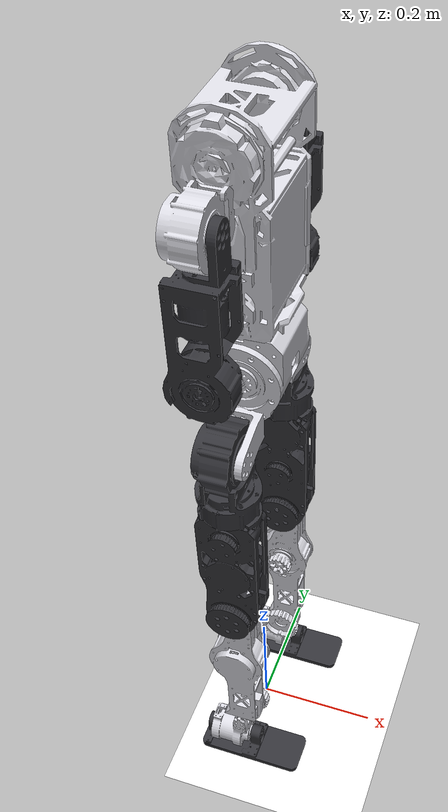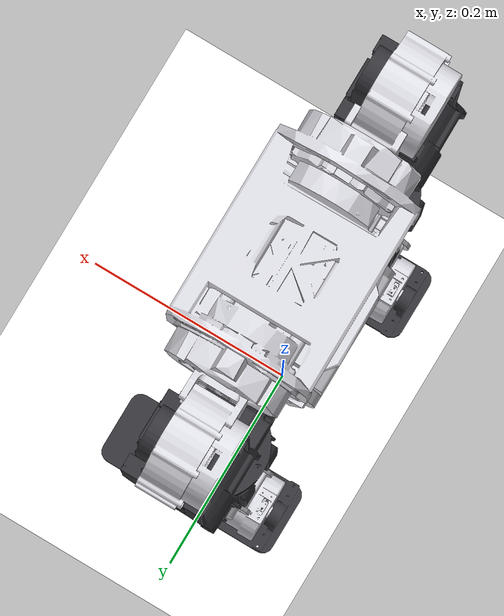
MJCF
<mujoco model="E1">
  <compiler angle="radian" meshdir="../meshes/" autolimits="true"/>

  <default>
    <default class="E1">
        <default class="visual">
            <geom type="mesh" group="1" contype="0" conaffinity="0" density="0"/>
        </default>

        <default class="collision">
            <geom group="3" mass="0" density="0" />
        </default>

        <default class="RS00">
          <joint damping="0.1" armature="0.001" frictionloss="0.3"/>
        </default>

        <default class="RS03">
          <joint damping="0.1" armature="0.02" frictionloss="0.3"/>
        </default>

        <default class="RS06">
          <joint damping="0.1" armature="0.012" frictionloss="0.3"/>
        </default>

    </default>
  </default>

  <asset>
    <texture type="skybox" builtin="gradient" rgb1="1 1 1" rgb2="1 1 1" width="800" height="800"/>
    <texture type="2d" name="groundplane" builtin="checker" mark="edge" rgb1="1 1 1" rgb2="1 1 1" markrgb="0 0 0" width="300" height="300"/>
    <material name="groundplane" texture="groundplane" texuniform="true" texrepeat="5 5" reflectance="0"/>
    <texture type="skybox" builtin="gradient" rgb1=".4 .5 .6" rgb2="0 0 0" width="100" height="100"/>
    <texture builtin="flat" height="1278" mark="cross" markrgb="1 1 1" name="texgeom" random="0.01" rgb1="0.8 0.6 0.4" rgb2="0.8 0.6 0.4" type="cube" width="127"/>
    <texture name="texplane" builtin="checker" height="512" width="512" rgb1=".2 .3 .4" rgb2=".1 .15 .2" type="2d" />
    <material name="MatPlane" reflectance="0.5" shininess="0.01" specular="0.1" texrepeat="1 1" texture="texplane" texuniform="true" />
    <material name="geom" texture="texgeom" texuniform="true"/>
  </asset>

  <worldbody>
    <geom name="floor" size="0 0 0.01" type="plane" material="groundplane" contype="1" conaffinity="0" priority="1" friction="0.6" condim="3"/>
    <light diffuse=".5 .5 .5" pos="-3 -3 5" dir="3 3 -5" castshadow="true"/>
  </worldbody>

  <asset>
    <mesh name="pelvis" file="pelvis.STL"/>
    <mesh name="left_hip_pitch_link" file="left_hip_pitch_link.STL"/>
    <mesh name="left_hip_roll_link" file="left_hip_roll_link.STL"/>
    <mesh name="left_hip_yaw_link" file="left_hip_yaw_link.STL"/>
    <mesh name="left_knee_link" file="left_knee_link.STL"/>
    <mesh name="left_ankle_pitch_link" file="left_ankle_pitch_link.STL"/>
    <mesh name="left_ankle_roll_link" file="left_ankle_roll_link.STL"/>
    <mesh name="right_hip_pitch_link" file="right_hip_pitch_link.STL"/>
    <mesh name="right_hip_roll_link" file="right_hip_roll_link.STL"/>
    <mesh name="right_hip_yaw_link" file="right_hip_yaw_link.STL"/>
    <mesh name="right_knee_link" file="right_knee_link.STL"/>
    <mesh name="right_ankle_pitch_link" file="right_ankle_pitch_link.STL"/>
    <mesh name="right_ankle_roll_link" file="right_ankle_roll_link.STL"/>
    <mesh name="torso_link" file="torso_link.STL"/>
    <mesh name="left_shoulder_pitch_link" file="left_shoulder_pitch_link.STL"/>
    <mesh name="left_shoulder_roll_link" file="left_shoulder_roll_link.STL"/>
    <mesh name="left_shoulder_yaw_link" file="left_shoulder_yaw_link.STL"/>
    <mesh name="left_elbow_link" file="left_elbow_link.STL"/>
    <mesh name="left_wrist_roll_link" file="left_wrist_roll_link.STL"/>
    <mesh name="left_wrist_pitch_link" file="left_wrist_pitch_link.STL"/>
    <mesh name="left_wrist_yaw_link" file="left_wrist_yaw_link.STL"/>
    <mesh name="right_shoulder_pitch_link" file="right_shoulder_pitch_link.STL"/>
    <mesh name="right_shoulder_roll_link" file="right_shoulder_roll_link.STL"/>
    <mesh name="right_shoulder_yaw_link" file="right_shoulder_yaw_link.STL"/>
    <mesh name="right_elbow_link" file="right_elbow_link.STL"/>
    <mesh name="right_wrist_roll_link" file="right_wrist_roll_link.STL"/>
    <mesh name="right_wrist_pitch_link" file="right_wrist_pitch_link.STL"/>
    <mesh name="right_wrist_yaw_link" file="right_wrist_yaw_link.STL"/>
    <mesh name="head_pitch_link" file="head_pitch_link.STL"/>
    <mesh name="head_yaw_link" file="head_yaw_link.STL"/>
  </asset>

  <worldbody>
    <body name="pelvis" pos="0 0 0.757">
      <inertial pos="-1.83414e-07 2.98944e-07 0.0134171" quat="0.713051 0.692756 -0.0774588 0.0751448" mass="2.73" diaginertia="0.0079738 0.00690357 0.0066126"/>
      <joint name="floating_base_joint" type="free"/>
      <geom class="visual" rgba="0.85 0.85 0.88 1" mesh="pelvis"/>
      <site name="imu_sensor" size="0.01" pos="0 0 0" rgba="0 0 0 0"/>
      <body name="left_hip_pitch_link" pos="0 0.0575 0">
        <inertial pos="0.00029538 0.0308444 -0.00578934" quat="0.596098 0.717966 0.34423 -0.103431" mass="0.145" diaginertia="0.000127162 0.000104737 3.89609e-05"/>
        <joint class="RS06" name="left_hip_pitch_joint" pos="0 0 0" axis="0 1 0" range="-1.8 1.57" />
        <geom class="visual" rgba="0.85 0.85 0.88 1" mesh="left_hip_pitch_link"/>
        <body name="left_hip_roll_link" pos="0 0.0575 -0.015">
          <inertial pos="-0.00147244 0.00041537 -0.0372145" quat="0.99892 0.00322789 0.0298082 0.035486" mass="1.39" diaginertia="0.0025721 0.00235517 0.0014478"/>
          <joint class="RS03" name="left_hip_roll_joint" pos="0 0 0" axis="1 0 0" range="-0.1745 1.57" />
          <geom class="visual" rgba="0.2 0.2 0.22 1" mesh="left_hip_roll_link"/>
          <body name="left_hip_yaw_link" pos="0 0 -0.098">
            <inertial pos="0.00070152 0.00025365 -0.0861466" quat="0.701604 0.0137633 0.00110639 0.712434" mass="2.32" diaginertia="0.0164698 0.0161258 0.00277234"/>
            <joint class="RS06" name="left_hip_yaw_joint" pos="0 0 0" axis="0 0 1" range="-1 1" />
            <geom class="visual" rgba="0.2 0.2 0.22 1" mesh="left_hip_yaw_link"/>
            <geom class="collision" size="0.06 0.1" pos="0 0 -0.085" type="cylinder" rgba="0.2 0.2 0.22 1"/>
            <body name="left_knee_link" pos="0 0 -0.222">
              <inertial pos="0.00414084 -0.00040825 -0.133269" quat="0.718157 0.00348393 -0.00195668 0.69587" mass="0.785" diaginertia="0.0115902 0.011566 0.000323101"/>
              <joint class="RS03" name="left_knee_joint" pos="0 0 0" axis="0 1 0" range="0 2.4435" />
              <geom class="visual" rgba="0.85 0.85 0.88 1" mesh="left_knee_link"/>
              <geom class="collision" size="0.045 0.115" pos="0.008 0 -0.165" quat="0.9998 0 0.0199987 0" type="cylinder" rgba="0.85 0.85 0.88 1"/>
              <body name="left_ankle_pitch_link" pos="0 0 -0.32">
                <inertial pos="-0.0142672 -0.00101925 -0.0429843" quat="0.400049 -0.225615 -0.0541715 0.886636" mass="0.597" diaginertia="0.000753146 0.000698637 0.000374587"/>
                <joint class="RS06" name="left_ankle_pitch_joint" pos="0 0 0" axis="0 1 0" range="-0.87 0.35" />
                <geom class="visual" rgba="0.85 0.85 0.88 1" mesh="left_ankle_pitch_link"/>
                <body name="left_ankle_roll_link" pos="0 0 -0.06">
                  <inertial pos="0.0115206 0 -0.0294706" quat="0 0.693826 0 0.720142" mass="0.294" diaginertia="0.000794803 0.00074194 0.000149907"/>
                  <joint class="RS00" name="left_ankle_roll_joint" pos="0 0 0" axis="1 0 0" range="-0.44 0.44" />
                  <geom class="visual" rgba="0.2 0.2 0.22 1" mesh="left_ankle_roll_link"/>
                  <geom class="collision" size="0.09 0.035 0.0125" pos="0.02 0 -0.027" type="box" rgba="0.2 0.2 0.22 1"/>
                </body>
              </body>
            </body>
          </body>
        </body>
      </body>
      <body name="right_hip_pitch_link" pos="0 -0.0575 0">
        <inertial pos="0.00029538 -0.0308444 -0.00578934" quat="0.717966 0.596098 0.103431 -0.34423" mass="0.145" diaginertia="0.000127162 0.000104737 3.89609e-05"/>
        <joint class="RS06" name="right_hip_pitch_joint" pos="0 0 0" axis="0 1 0" range="-1.8 1.57" />
        <geom class="visual" rgba="0.85 0.85 0.88 1" mesh="right_hip_pitch_link"/>
        <body name="right_hip_roll_link" pos="0 -0.0575 -0.015">
          <inertial pos="-0.00147237 -0.00041532 -0.0372145" quat="0.99892 -0.00323341 0.0298083 -0.0354861" mass="1.39" diaginertia="0.00257209 0.00235517 0.0014478"/>
          <joint class="RS03" name="right_hip_roll_joint" pos="0 0 0" axis="1 0 0" range="-1.57 0.1745" />
          <geom class="visual" rgba="0.2 0.2 0.22 1" mesh="right_hip_roll_link"/>
          <body name="right_hip_yaw_link" pos="0 0 -0.098">
            <inertial pos="0.00070152 -0.00025365 -0.0861469" quat="0.712423 0.00110658 0.0137633 0.701614" mass="2.32" diaginertia="0.0164698 0.0161258 0.00277233"/>
            <joint class="RS06" name="right_hip_yaw_joint" pos="0 0 0" axis="0 0 1" range="-1 1" />
            <geom class="visual" rgba="0.2 0.2 0.22 1" mesh="right_hip_yaw_link"/>
            <geom class="collision" size="0.06 0.1" pos="0 0 -0.085" type="cylinder" rgba="0.2 0.2 0.22 1"/>
            <body name="right_knee_link" pos="0 0 -0.222">
              <inertial pos="0.00414085 0.00040825 -0.133269" quat="0.69587 -0.00195668 0.00348393 0.718157" mass="0.785" diaginertia="0.0115902 0.011566 0.000323101"/>
              <joint class="RS03" name="right_knee_joint" pos="0 0 0" axis="0 1 0" range="0 2.4435" />
              <geom class="visual" rgba="0.85 0.85 0.88 1" mesh="right_knee_link"/>
              <geom class="collision" size="0.045 0.115" pos="0.008 0 -0.165" quat="0.9998 0 0.0199987 0" type="cylinder" rgba="0.85 0.85 0.88 1"/>
              <body name="right_ankle_pitch_link" pos="0 0 -0.32">
                <inertial pos="-0.0142671 0.00101913 -0.0429843" quat="0.886618 -0.0541829 -0.225612 0.400089" mass="0.597" diaginertia="0.000753151 0.000698642 0.000374587"/>
                <joint class="RS06" name="right_ankle_pitch_joint" pos="0 0 0" axis="0 1 0" range="-0.87 0.35" />
                <geom class="visual" rgba="0.85 0.85 0.88 1" mesh="right_ankle_pitch_link"/>
                <body name="right_ankle_roll_link" pos="0 0 -0.06">
                  <inertial pos="0.0115206 0 -0.0294706" quat="0 0.693826 0 0.720142" mass="0.294" diaginertia="0.000794803 0.00074194 0.000149907"/>
                  <joint class="RS00" name="right_ankle_roll_joint" pos="0 0 0" axis="1 0 0" range="-0.44 0.44" />
                  <geom class="visual" rgba="0.2 0.2 0.22 1" mesh="right_ankle_roll_link"/>
                  <geom class="collision" size="0.09 0.035 0.0125" pos="0.02 0 -0.027" type="box" rgba="0.2 0.2 0.22 1"/>
                </body>
              </body>
            </body>
          </body>
        </body>
      </body>
      <body name="torso_link" pos="0 0 0.111">
        <inertial pos="0.0380623 -0.00126569 0.0918748" quat="0.722295 -0.201918 -0.220386 0.623658" mass="7.9" diaginertia="0.289905 0.283827 0.0394174"/>
        <joint class="RS03" name="waist_yaw_joint" pos="0 0 0" axis="0 0 1" range="-1.57 1.57" />
        <geom class="visual" rgba="0.85 0.85 0.88 1" mesh="torso_link"/>
        <geom class="collision" size="0.08 0.08 0.15" pos="0 0 0.13" type="box" rgba="0.85 0.85 0.88 1"/>

        <body name="left_shoulder_pitch_link" pos="0 0.095 0.239">
          <inertial pos="-0.0029314 0.0423688 2.34e-06" quat="0.706708 0.70677 -0.0227616 -0.0228398" mass="0.86" diaginertia="0.00103082 0.00086617 0.00061448"/>
          <joint class="RS06" name="left_shoulder_pitch_joint" pos="0 0 0" axis="0 1 0" range="-1.0472 2.7925" />
          <geom class="visual" rgba="0.85 0.85 0.88 1" mesh="left_shoulder_pitch_link"/>
          <body name="left_shoulder_roll_link" pos="0 0.055 0">
            <inertial pos="0.00078196 -0.00016662 -0.0289719" quat="0.988355 -1.43238e-05 -0.151473 0.0144757" mass="0.1" diaginertia="6.68651e-05 6.24371e-05 2.34577e-05"/>
            <joint class="RS06" name="left_shoulder_roll_joint" pos="0 0 0" axis="1 0 0" range="-0.1745 2.9671" />
            <geom class="visual" rgba="0.2 0.2 0.22 1" mesh="left_shoulder_roll_link"/>
            <geom class="collision" size="0.044 0.025" quat="0.707105 0 0.707108 0" type="cylinder" rgba="0.2 0.2 0.22 1"/>
            <body name="left_shoulder_yaw_link" pos="0 0 -0.051">
              <inertial pos="-0.00317011 -0.0005976 -0.0702145" quat="0.977669 -0.00708476 -0.0245534 0.208592" mass="1.55" diaginertia="0.00653346 0.00637623 0.00143548"/>
              <joint class="RS00" name="left_shoulder_yaw_joint" pos="0 0 0" axis="0 0 1" range="-2.618 2.618" />
              <geom class="visual" rgba="0.2 0.2 0.22 1" mesh="left_shoulder_yaw_link"/>
              <geom class="collision" size="0.045 0.045" pos="0 0 -0.06" type="cylinder" rgba="0.2 0.2 0.22 1"/>

            </body>
          </body>
        </body>

        <body name="right_shoulder_pitch_link" pos="0 -0.095 0.239">
          <inertial pos="-0.0029314 -0.0423688 -2.34e-06" quat="0.706708 0.70677 0.0227616 0.0228398" mass="0.86" diaginertia="0.00103082 0.00086617 0.00061448"/>
          <joint class="RS06" name="right_shoulder_pitch_joint" pos="0 0 0" axis="0 1 0" range="-1.0472 2.7925"/>
          <geom class="visual" rgba="0.85 0.85 0.88 1" mesh="right_shoulder_pitch_link"/>
          <body name="right_shoulder_roll_link" pos="0 -0.055 0">
            <inertial pos="0.00078196 0 -0.0289723" quat="0.988463 0 -0.151464 0" mass="0.1" diaginertia="6.68615e-05 6.245e-05 2.34585e-05"/>
            <joint class="RS06" name="right_shoulder_roll_joint" pos="0 0 0" axis="1 0 0" range="-2.9671 0.1745"/>
            <geom class="visual" rgba="0.2 0.2 0.22 1" mesh="right_shoulder_roll_link"/>
            <geom class="collision" size="0.044 0.025" quat="0.707105 0 0.707108 0" type="cylinder" rgba="0.2 0.2 0.22 1"/>
            <body name="right_shoulder_yaw_link" pos="0 0 -0.051">
              <inertial pos="-0.00317012 0.0005976 -0.0702146" quat="0.977671 0.00708446 -0.0245535 -0.20858" mass="1.55" diaginertia="0.00653347 0.00637624 0.00143548"/>
              <joint class="RS00" name="right_shoulder_yaw_joint" pos="0 0 0" axis="0 0 1" range="-2.618 2.618"/>
              <geom class="visual" rgba="0.2 0.2 0.22 1" mesh="right_shoulder_yaw_link"/>
              <geom class="collision" size="0.045 0.045" pos="0 0 -0.06" type="cylinder" rgba="0.2 0.2 0.22 1"/>

            </body>
          </body>
        </body>
      </body>
    </body>
  </worldbody>

  <actuator>
    <motor name="left_hip_pitch" joint="left_hip_pitch_joint" gear="1" ctrllimited="true" ctrlrange="-60.0 60.0" />
    <motor name="left_hip_roll" joint="left_hip_roll_joint" gear="1" ctrllimited="true" ctrlrange="-60.0 60.0" />
    <motor name="left_hip_yaw" joint="left_hip_yaw_joint" gear="1" ctrllimited="true" ctrlrange="-36.0 36.0" />
    <motor name="left_knee" joint="left_knee_joint" gear="1" ctrllimited="true" ctrlrange="-59.3 59.3" />
    <motor name="left_ankle_pitch" joint="left_ankle_pitch_joint" gear="1" ctrllimited="true" ctrlrange="-59.3 59.3" />
    <motor name="left_ankle_roll" joint="left_ankle_roll_joint" gear="1" ctrllimited="true" ctrlrange="-14.0 14.0" />

    <motor name="right_hip_pitch" joint="right_hip_pitch_joint" gear="1" ctrllimited="true" ctrlrange="-60.0 60.0" />
    <motor name="right_hip_roll" joint="right_hip_roll_joint" gear="1" ctrllimited="true" ctrlrange="-60.0 60.0" />
    <motor name="right_hip_yaw" joint="right_hip_yaw_joint" gear="1" ctrllimited="true" ctrlrange="-36.0 36.0" />
    <motor name="right_knee" joint="right_knee_joint" gear="1" ctrllimited="true" ctrlrange="-59.3 59.3" />
    <motor name="right_ankle_pitch" joint="right_ankle_pitch_joint" gear="1" ctrllimited="true" ctrlrange="-59.3 59.3" />
    <motor name="right_ankle_roll" joint="right_ankle_roll_joint" gear="1" ctrllimited="true" ctrlrange="-14.0 14.0" />

    <motor name="torso" joint="waist_yaw_joint" gear="1" ctrllimited="true" ctrlrange="-60.0 60.0" />

    <motor name="left_shoulder_pitch" joint="left_shoulder_pitch_joint" gear="1" ctrllimited="true" ctrlrange="-36.0 36.0" />
    <motor name="left_shoulder_roll" joint="left_shoulder_roll_joint" gear="1" ctrllimited="true" ctrlrange="-36.0 36.0" />
    <motor name="left_shoulder_yaw" joint="left_shoulder_yaw_joint" gear="1" ctrllimited="true" ctrlrange="-14.0 14.0" />

    <motor name="right_shoulder_pitch" joint="right_shoulder_pitch_joint" gear="1" ctrllimited="true" ctrlrange="-36.0 36.0" />
    <motor name="right_shoulder_roll" joint="right_shoulder_roll_joint" gear="1" ctrllimited="true" ctrlrange="-36.0 36.0" />
    <motor name="right_shoulder_yaw" joint="right_shoulder_yaw_joint" gear="1" ctrllimited="true" ctrlrange="-14.0 14.0" />
  </actuator>

  <sensor>
    <jointpos name="left_hip_pitch_pos" joint="left_hip_pitch_joint"/>
    <jointpos name="left_hip_roll_pos" joint="left_hip_roll_joint"/>
    <jointpos name="left_hip_yaw_pos" joint="left_hip_yaw_joint"/>
    <jointpos name="left_knee_pos" joint="left_knee_joint"/>
    <jointpos name="left_ankle_pitch_pos" joint="left_ankle_pitch_joint"/>
    <jointpos name="left_ankle_roll_pos" joint="left_ankle_roll_joint"/>
    <jointpos name="right_hip_pitch_pos" joint="right_hip_pitch_joint"/>
    <jointpos name="right_hip_roll_pos" joint="right_hip_roll_joint"/>
    <jointpos name="right_hip_yaw_pos" joint="right_hip_yaw_joint"/>
    <jointpos name="right_knee_pos" joint="right_knee_joint"/>
    <jointpos name="right_ankle_pitch_pos" joint="right_ankle_pitch_joint"/>
    <jointpos name="right_ankle_roll_pos" joint="right_ankle_roll_joint"/>
    <jointpos name="waist_yaw_pos" joint="waist_yaw_joint"/>
    <jointpos name="left_shoulder_pitch_pos" joint="left_shoulder_pitch_joint"/>
    <jointpos name="left_shoulder_roll_pos" joint="left_shoulder_roll_joint"/>
    <jointpos name="left_shoulder_yaw_pos" joint="left_shoulder_yaw_joint"/>
    <jointpos name="right_shoulder_pitch_pos" joint="right_shoulder_pitch_joint"/>
    <jointpos name="right_shoulder_roll_pos" joint="right_shoulder_roll_joint"/>
    <jointpos name="right_shoulder_yaw_pos" joint="right_shoulder_yaw_joint"/>

    <jointvel name="left_hip_pitch_vel" joint="left_hip_pitch_joint"/>
    <jointvel name="left_hip_roll_vel" joint="left_hip_roll_joint"/>
    <jointvel name="left_hip_yaw_vel" joint="left_hip_yaw_joint"/>
    <jointvel name="left_knee_vel" joint="left_knee_joint"/>
    <jointvel name="left_ankle_pitch_vel" joint="left_ankle_pitch_joint"/>
    <jointvel name="left_ankle_roll_vel" joint="left_ankle_roll_joint"/>
    <jointvel name="right_hip_pitch_vel" joint="right_hip_pitch_joint"/>
    <jointvel name="right_hip_roll_vel" joint="right_hip_roll_joint"/>
    <jointvel name="right_hip_yaw_vel" joint="right_hip_yaw_joint"/>
    <jointvel name="right_knee_vel" joint="right_knee_joint"/>
    <jointvel name="right_ankle_pitch_vel" joint="right_ankle_pitch_joint"/>
    <jointvel name="right_ankle_roll_vel" joint="right_ankle_roll_joint"/>
    <jointvel name="waist_yaw_vel" joint="waist_yaw_joint"/>
    <jointvel name="left_shoulder_pitch_vel" joint="left_shoulder_pitch_joint"/>
    <jointvel name="left_shoulder_roll_vel" joint="left_shoulder_roll_joint"/>
    <jointvel name="left_shoulder_yaw_vel" joint="left_shoulder_yaw_joint"/>
    <jointvel name="right_shoulder_pitch_vel" joint="right_shoulder_pitch_joint"/>
    <jointvel name="right_shoulder_roll_vel" joint="right_shoulder_roll_joint"/>
    <jointvel name="right_shoulder_yaw_vel" joint="right_shoulder_yaw_joint"/>

    <actuatorfrc name="left_hip_pitch_torque" actuator="left_hip_pitch"/>
    <actuatorfrc name="left_hip_roll_torque" actuator="left_hip_roll"/>
    <actuatorfrc name="left_hip_yaw_torque" actuator="left_hip_yaw"/>
    <actuatorfrc name="left_knee_torque" actuator="left_knee"/>
    <actuatorfrc name="left_ankle_pitch_torque" actuator="left_ankle_pitch"/>
    <actuatorfrc name="left_ankle_roll_torque" actuator="left_ankle_roll"/>
    <actuatorfrc name="right_hip_pitch_torque" actuator="right_hip_pitch"/>
    <actuatorfrc name="right_hip_roll_torque" actuator="right_hip_roll"/>
    <actuatorfrc name="right_hip_yaw_torque" actuator="right_hip_yaw"/>
    <actuatorfrc name="right_knee_torque" actuator="right_knee"/>
    <actuatorfrc name="right_ankle_pitch_torque" actuator="right_ankle_pitch"/>
    <actuatorfrc name="right_ankle_roll_torque" actuator="right_ankle_roll"/>
    <actuatorfrc name="waist_yaw_torque" actuator="torso"/>
    <actuatorfrc name="left_shoulder_pitch_torque" actuator="left_shoulder_pitch"/>
    <actuatorfrc name="left_shoulder_roll_torque" actuator="left_shoulder_roll"/>
    <actuatorfrc name="left_shoulder_yaw_torque" actuator="left_shoulder_yaw"/>
    <actuatorfrc name="right_shoulder_pitch_torque" actuator="right_shoulder_pitch"/>
    <actuatorfrc name="right_shoulder_roll_torque" actuator="right_shoulder_roll"/>
    <actuatorfrc name="right_shoulder_yaw_torque" actuator="right_shoulder_yaw"/>

    <framequat name='orientation' objtype='site' objname='imu_sensor'/>
    <framepos name='position' objtype='site' noise='0.001' objname='imu_sensor'/>
    <gyro name='angular-velocity' site='imu_sensor' cutoff='34.9'/>
    <accelerometer name='linear-acceleration' site='imu_sensor' cutoff='157'/>
  </sensor>
</mujoco>
